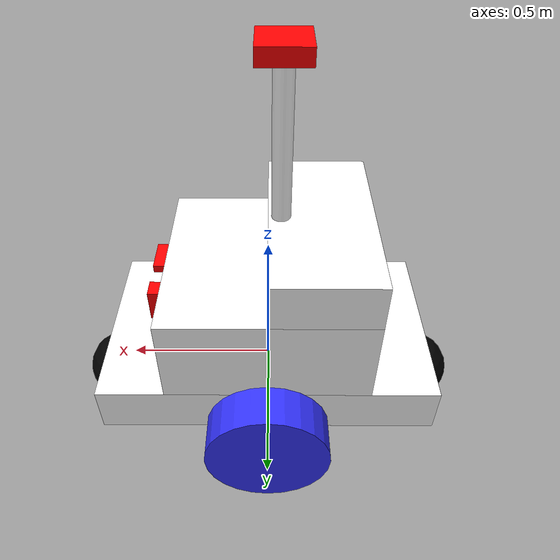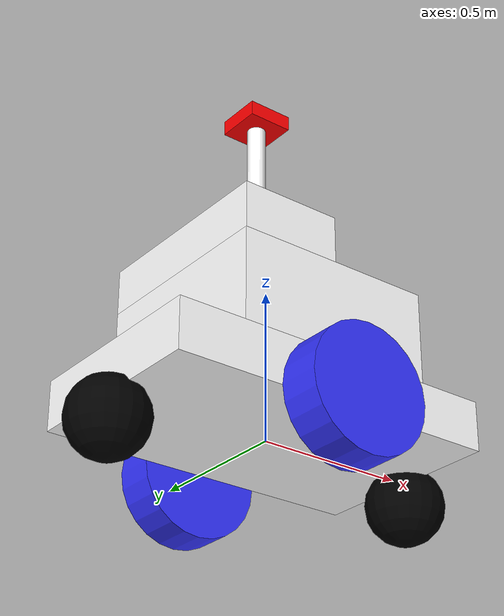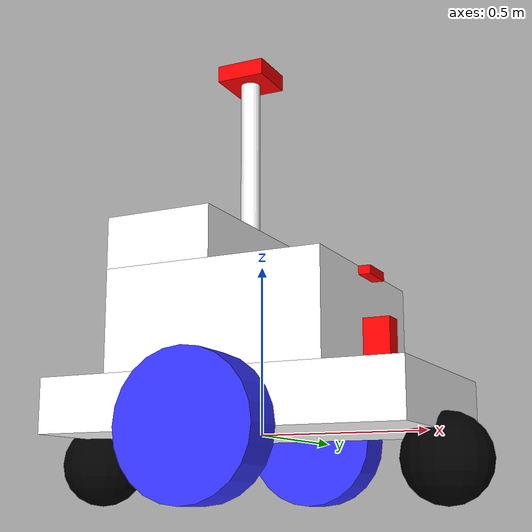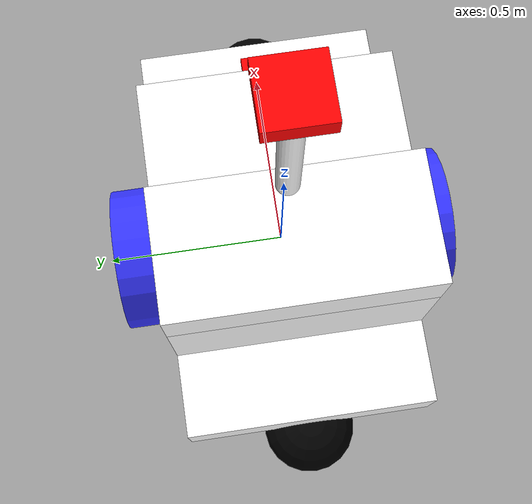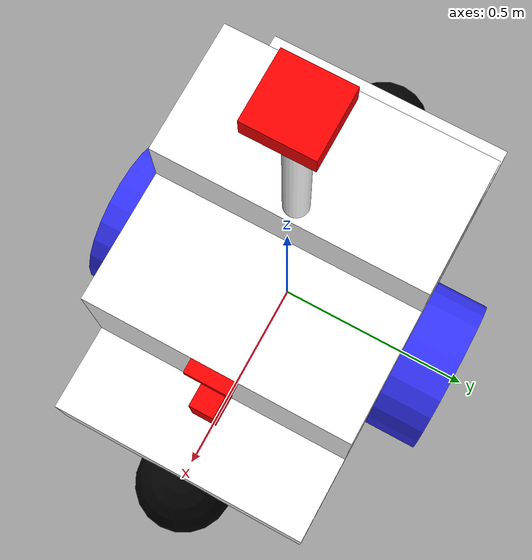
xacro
<?xml version="1.0"?>
<robot xmlns:xacro="http://www.ros.org/wiki/xacro"  name="dynabot">

    <xacro:arg name="use_ros2_control" default="true"/>
    <xacro:arg name="sim_mode" default="true"/>

    <xacro:include filename="robot_core.xacro" />

    <xacro:if value="$(arg use_ros2_control)">
        <xacro:include filename="ros2_control.xacro" />
    </xacro:if>
    <xacro:unless value="$(arg use_ros2_control)">
        <xacro:include filename="gazebo_control.xacro" />
    </xacro:unless>
    <xacro:include filename="lidar.xacro" />
    <xacro:include filename="camera.xacro" />

</robot>

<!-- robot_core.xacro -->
<robot xmlns:xacro="http://www.ros.org/wiki/xacro">

    <xacro:include filename="inertial_macros.xacro" />

    <material name="white">
        <color rgba="1 1 1 1" />
    </material>

    <material name="orange">
        <color rgba="1 0.3 0.1 1"/>
    </material>

    <material name="blue">
        <color rgba="0.2 0.2 1 1"/>
    </material>

    <material name="black">
        <color rgba="0 0 0 1"/>
    </material>

    <material name="red">
        <color rgba="1 0 0 1"/>
    </material>

    <!--BASE LINK-->
    <link name="base_link">

    </link>

    <!--CHASSIS LINK-->
    <joint name="chassis_joint" type="fixed">
        <parent link="base_link" />
        <child link="chassis" />
        <origin xyz="-0.5495 0 0" />
    </joint>

    <link name="chassis">
        <visual>
            <origin xyz="0.5495 0 0.08135" />
            <geometry>
                <box size="1.099 0.6689 0.1627" />
            </geometry>
            <material name="white" />
        </visual>
        <collision>
            <origin xyz="0.5495 0 0.08135" />
            <geometry>
                <box size="1.099 0.6689 0.1627" />
            </geometry>
        </collision>
        <xacro:inertial_box mass="29.58" x="1.099" y="0.6689" z="0.1627">
            <origin xyz="0.5495 0 0.08135" rpy="0 0 0" />
        </xacro:inertial_box>
    </link>

    <gazebo reference="chassis">
        <material>Gazebo/White</material>
    </gazebo>

    <!--LEFT WHEEL LINK-->
    <joint name="left_wheel_joint" type="continuous">
        <parent link="base_link"/>
        <child link="left_wheel"/>
        <origin xyz="0 0.33445 0" rpy="-${pi/2} 0 0" />
        <axis xyz="0 0 1" />
    </joint>

    <link name="left_wheel">
        <visual>
            <origin xyz="0 0 0.0681" />
            <geometry>
                <cylinder radius="0.202" length=".1362" />
            </geometry>
            <material name="blue" />
        </visual>
        <collision>
            <origin xyz="0 0 0.0681" />
            <geometry>
                <sphere radius="0.202" />
            </geometry>
        </collision>
        <xacro:inertial_cylinder mass="6.41" length=".1362" radius="0.202">
            <origin xyz="0 0 0.0681" rpy="0 0 0" />
        </xacro:inertial_cylinder>
    </link>

    <gazebo reference="left_wheel">
        <material>Gazebo/Blue</material>
    </gazebo>

    <!--RIGHT WHEEL LINK-->
    <joint name="right_wheel_joint" type="continuous">
        <parent link="base_link"/>
        <child link="right_wheel"/>
        <origin xyz="0 -0.33445 0" rpy="${pi/2} 0 0" />
        <axis xyz="0 0 -1" />
    </joint>

    <link name="right_wheel">
        <visual>
            <origin xyz="0 0 0.0681" />
            <geometry>
                <cylinder radius="0.202" length=".1362" />
            </geometry>
            <material name="blue" />
        </visual>
        <collision>
            <origin xyz="0 0 0.0681" />
            <geometry>
                <sphere radius="0.202" />
            </geometry>
        </collision>
        <xacro:inertial_cylinder mass="6.41" length=".1362" radius="0.202">
            <origin xyz="0 0 0.0681" rpy="0 0 0" />
        </xacro:inertial_cylinder>
    </link>

    <gazebo reference="right_wheel">
        <material>Gazebo/Blue</material>
    </gazebo>

    <!--FRONT CASTER WHEEL LINK-->
    <joint name="front_caster_wheel_joint" type="fixed">
        <parent link="chassis" />
        <child link="front_caster_wheel" />
        <origin xyz="1.099 0 -0.075" />
    </joint>

    <link name="front_caster_wheel">
        <visual>
            <geometry>
                <sphere radius="0.127" />
            </geometry>
            <material name="black" />
        </visual>
        <collision>
            <geometry>
                <sphere radius="0.127" />
            </geometry>
        </collision>
        <xacro:inertial_sphere mass="2.27" radius="0.05">
            <origin xyz="0 0 0" rpy="0 0 0" />
        </xacro:inertial_sphere>
    </link>

    <gazebo reference="front_caster_wheel">
        <material>Gazebo/Black</material>
        <mu1 value="0.001" />
        <mu2 value="0.001" />
    </gazebo>

    <!--REAR CASTER WHEEL LINK-->
    <joint name="rear_caster_wheel_joint" type="fixed">
        <parent link="chassis" />
        <child link="rear_caster_wheel" />
        <origin xyz="0 0 -0.075" />
    </joint>

    <link name="rear_caster_wheel">
        <visual>
            <geometry>
                <sphere radius="0.127" />
            </geometry>
            <material name="black" />
        </visual>
        <collision>
            <geometry>
                <sphere radius="0.127" />
            </geometry>
        </collision>
        <xacro:inertial_sphere mass="2.27" radius="0.05">
            <origin xyz="0 0 0" rpy="0 0 0" />
        </xacro:inertial_sphere>
    </link>

    <gazebo reference="rear_caster_wheel">
        <material>Gazebo/Black</material>
        <mu1 value="0.001" />
        <mu2 value="0.001" />
    </gazebo>

    <!--BOTTOM FRAME-->
    <joint name="bottom_frame_joint" type="fixed">
        <parent link="chassis" />
        <child link="bottom_frame" />
        <origin xyz="0.2197 0 0.1627" />
    </joint>

    <link name="bottom_frame">
        <visual>
            <origin xyz="0.3298 0 0.14925" />
            <geometry>
                <box size="0.6596 0.6689 0.2985" />
            </geometry>
            <material name="white" />
        </visual>
        <collision>
            <origin xyz="0.3298 0 0.14925" />
            <geometry>
                <box size="0.6596 0.6689 0.2985" />
            </geometry>
        </collision>
        <xacro:inertial_box mass="8.22" x="0.6596" y="0.6689" z="0.2985">
            <origin xyz="0.3298 0 0.14925" rpy="0 0 0" />
        </xacro:inertial_box>
    </link>

    <gazebo reference="bottom_frame">
        <material>Gazebo/White</material>
    </gazebo>

    <!--TOP FRAME-->
    <joint name="top_frame_joint" type="fixed">
        <parent link="bottom_frame" />
        <child link="top_frame" />
        <origin xyz="0 0 0.2985" />
    </joint>

    <link name="top_frame">
        <visual>
            <origin xyz="0.1651 0 0.0762" />
            <geometry>
                <box size="0.3302 0.6689 0.1524" />
            </geometry>
            <material name="white" />
        </visual>
        <collision>
            <origin xyz="0.1651 0 0.0762" />
            <geometry>
                <box size="0.3302 0.6689 0.1524" />
            </geometry>
        </collision>
        <xacro:inertial_box mass="8.22" x="0.3302" y="0.6689" z="0.1524">
            <origin xyz="0.1651 0 0.0762" rpy="0 0 0" />
        </xacro:inertial_box>
    </link>

    <gazebo reference="top_frame">
        <material>Gazebo/White</material>
    </gazebo>

    <!--GPS HOLDER + LIGHTS-->
    <joint name="gps_holder_joint" type="fixed">
        <parent link="top_frame" />
        <child link="gps_holder_link" />
        <origin xyz="0.29 0 0.1524" />
    </joint>

    <link name="gps_holder_link">
        <visual>
            <origin xyz="0 0 0.2525" />
            <geometry>
                <cylinder radius="0.030" length="0.505" />
            </geometry>
            <material name="white" />
        </visual>
        <collision>
            <origin xyz="0 0 0.2525" />
            <geometry>
                <cylinder radius="0.030" length="0.505" />
            </geometry>
        </collision>
        <xacro:inertial_cylinder mass="0.34" length="0.505" radius="0.030">
            <origin xyz="0 0 0.2525" rpy="0 0 0" />
        </xacro:inertial_cylinder>
    </link>

    <gazebo reference="gps_holder_link">
        <material>Gazebo/White</material>
    </gazebo>

    <!--GPS-->
    <joint name="gps_joint" type="fixed">
        <parent link="gps_holder_link" />
        <child link="gps_link" />
        <origin xyz="0 0 0.505" />
    </joint>

    <link name="gps_link">
        <visual>
            <origin xyz="-0 0 0" />
            <geometry>
                <box size="0.150 0.150 0.050" />
            </geometry>
            <material name="red" />
        </visual>
        <collision>
            <origin xyz="-0 0 0" />
            <geometry>
                <box size="0.150 0.150 0.050"  />
            </geometry>
        </collision>
        <xacro:inertial_box mass="0.13" x="0.150" y="0.150" z="0.050">
            <origin xyz="0 0 0" rpy="0 0 0" />
        </xacro:inertial_box>
    </link>

    <gazebo reference="gps_link">
        <material>Gazebo/Red</material>
    </gazebo>

    <!--IMU-->
    <joint name="imu_joint" type="fixed">
        <parent link="bottom_frame" />
        <child link="imu_link" />
        <origin xyz="0.658 0 0.2858" />
    </joint>

    <link name="imu_link">
        <visual>
            <origin xyz="0 0 0" />
            <geometry>
                <box size="0.01 0.01 0.007" />
            </geometry>
            <material name="red" />
        </visual>
        <collision>
            <origin xyz="0 0 0" />
            <geometry>
                <box size="0.01 0.01 0.007"  />
            </geometry>
        </collision>
        <xacro:inertial_box mass="0.13" x="0.01" y="0.01" z="0.007">
            <origin xyz="0 0 0" rpy="0 0 0" />
        </xacro:inertial_box>
    </link>

    <gazebo reference="imu_link">
        <material>Gazebo/Red</material>
    </gazebo>

</robot>

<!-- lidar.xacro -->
<robot xmlns:xacro="http://www.ros.org/wiki/xacro" >

    <!--LIDAR-->
    <joint name="laser_joint" type="fixed">
        <parent link="bottom_frame" />
        <child link="laser_frame" />
        <origin xyz="0.73915 0 0.1336" />
    </joint>

    <link name="laser_frame">
        <visual>
            <origin xyz="-0.039775 0 -0.03715" />
            <geometry>
                <box size="0.07955 0.0635 0.1143" />
            </geometry>
            <material name="red" />
        </visual>
        <collision>
            <origin xyz="-0.039775 0 -0.03715" />
            <geometry>
                <box size="0.07955 0.0635 0.1143"  />
            </geometry>
        </collision>
        <xacro:inertial_box mass="0.13" x="0.07955" y="0.0635" z="0.1143">
            <origin xyz="-0.039775 0 -0.03715" rpy="0 0 0" />
        </xacro:inertial_box>
    </link>

    <!-- Gazebo plugin to simulate LIDAR -->
    <gazebo reference="laser_frame">
        <material>Gazebo/Red</material>

        <sensor name="laser" type="ray">
            <pose>0 0 0 0 0 0</pose>
            <visualize>false</visualize>
            <update_rate>10</update_rate>
            <ray>
                <scan>
                    <horizontal>
                        <samples>360</samples>
                        <min_angle>-1.5708</min_angle>
                        <max_angle>1.5708</max_angle>
                    </horizontal>
                </scan>
                <range>
                    <min>0.3</min>
                    <max>12</max>
                </range>
            </ray>
            <plugin name="laser_controller" filename="libgazebo_ros_ray_sensor.so">
                <ros>
                    <remapping>~/out:=/scan</remapping>
                </ros>
                <output_type>sensor_msgs/LaserScan</output_type>
                <frameName>laser_frame</frameName>
            </plugin>
        </sensor>
    </gazebo>

</robot>

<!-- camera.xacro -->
<robot xmlns:xacro="http://www.ros.org/wiki/xacro" >

    <!--CAMERA-->
    <joint name="camera_joint" type="fixed">
        <parent link="bottom_frame" />
        <child link="camera_link" />
        <origin xyz="0.6947 0 0.2858" rpy="0 0 0" />
    </joint>

    <link name="camera_link">
        <visual>
            <origin xyz="-0.01755 0 0" />
            <geometry>
                <box size="0.0351 0.1143 0.0254" />
            </geometry>
            <material name="red" />
        </visual>
        <collision>
            <origin xyz="-0.01755 0 0" />
            <geometry>
                <box size="0.0351 0.1143 0.0254"  />
            </geometry>
        </collision>
        <xacro:inertial_box mass="0.13" x="0.0351" y="0.1143" z="0.0254">
            <origin xyz="-0.01755 0 0" rpy="0 0 0" />
        </xacro:inertial_box>
    </link>

    <joint name="camera_optical_joint" type="fixed">
        <parent link="camera_link" />
        <child link="camera_link_optical" />
        <origin xyz="0.01755 0 0" rpy="${-pi/2} 0 ${-pi/2}"/>
    </joint>

    <link name="camera_link_optical"></link>

    <!-- Gazebo plugin to simulate camera -->
    <gazebo reference="camera_link">
        <material>Gazebo/Red</material>

        <sensor name="camera" type="camera">
            <pose> 0 0 0 0 0 0 </pose>
            <visualize>true</visualize>
            <update_rate>10</update_rate>
            <camera>
                <horizontal_fov>1.089</horizontal_fov>
                <image>
                    <format>R8G8B8</format>
                    <width>640</width>
                    <height>480</height>
                </image>
                <clip>
                    <near>0.05</near>
                    <far>8.0</far>
                </clip>
            </camera>
            <plugin name="camera_controller" filename="libgazebo_ros_camera.so">
                <frame_name>camera_link_optical</frame_name>
            </plugin>
        </sensor>
    </gazebo>

</robot>
